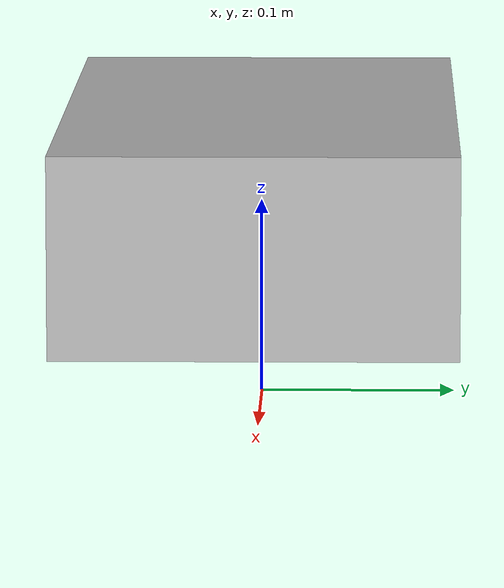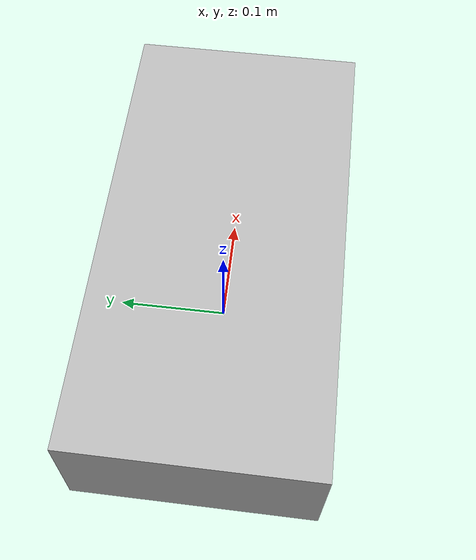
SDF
<?xml version='1.0'?>
<sdf version='1.4'>
  <model name="my_robot">
    <static>true</static>
    <link name='chassis'>
      <pose>0 0 0.1 0 0 0</pose>
      <collision name='collision'>
        <geometry>
          <box>
            <size>0.4 0.2 0.1</size>
          </box>
        </geometry>
      </collision>
      <visual name='visual'>
        <geometry>
          <box>
            <size>0.4 0.2 0.1</size>
          </box>
        </geometry>
      </visual>
      <!-- Add a depth camera sensor -->
      <sensor name="depth_camera_sensor" type="depth">
        <always_on>true</always_on>
        <!-- Set the horizontal and vertical field of view -->
        <horizontal_fov>1.05</horizontal_fov>
        <vertical_fov>0.75</vertical_fov>
        <!-- Set the image size -->
        <image>
          <width>640</width>
          <height>480</height>
        </image>
        <!-- Set the depth camera properties -->
        <depth>
          <near>0.1</near>
          <far>100.0</far>
        </depth>
        <!-- Set the update rate of the camera -->
        <update_rate>30.0</update_rate>
        <!-- Add a plugin to interface with ROS2 -->
        <plugin name="ros2_camera_plugin" filename="libgazebo_ros2_camera.so">
          <ros2>
            <namespace>/</namespace>
            <topic>/camera/depth/image_raw</topic>
            <frame_name>camera_depth_optical_frame</frame_name>
            <update_rate>30.0</update_rate>
            <camera_info_topic>/camera/depth/camera_info</camera_info_topic>
          </ros2>
        </plugin>
      </sensor>
    </link>
  </model>
</sdf>
